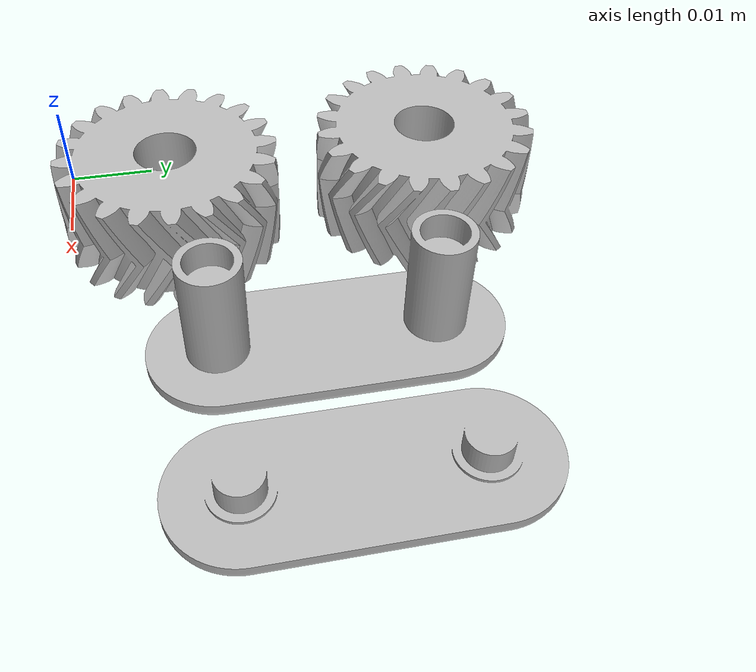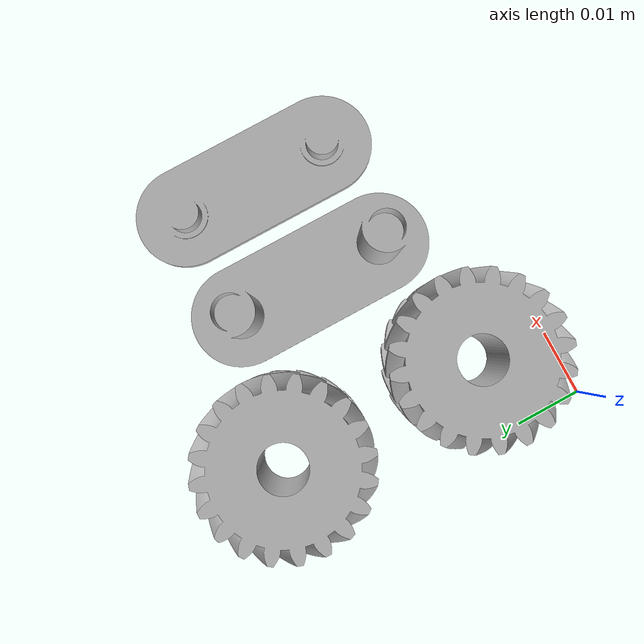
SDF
<?xml version="1.0" ?>
<sdf version="1.5">
  <model name="fidget_aio">
    <static>false</static>
    <link name="link">
      <collision name="collision">
        <geometry>
          <mesh>
            <scale>1 1 1</scale>
            <uri>model://fidget_aio/meshes/fidget_aio.stl</uri>
          </mesh>
        </geometry>
      </collision>
      <visual name="visual">
        <geometry>
          <mesh>
            <scale>1 1 1</scale>
            <uri>model://fidget_aio/meshes/fidget_aio.stl</uri>
          </mesh>
        </geometry>
      </visual>
    </link>
  </model>
</sdf>
